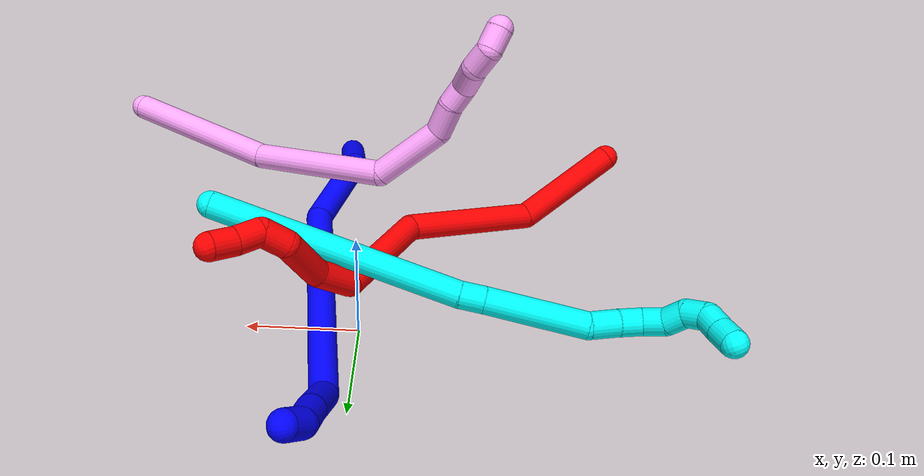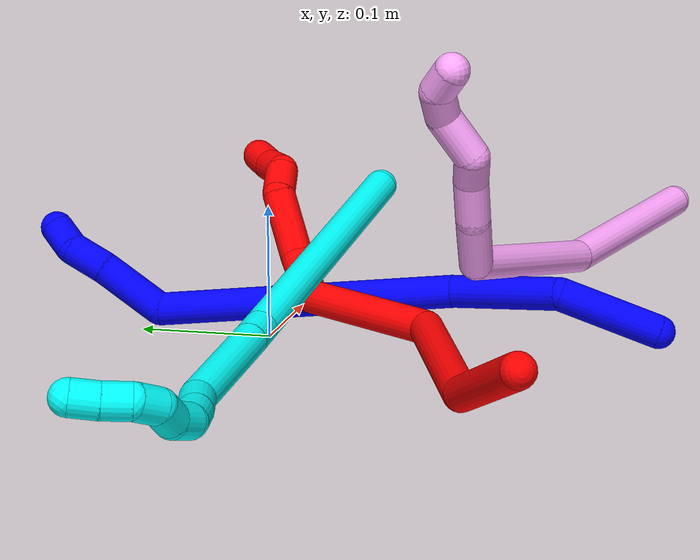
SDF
<sdf version="1.7">
 <world name="default">
  <plugin name="TubeGeneratorPlugin" filename="libtube_generator_plugin.so"/>
  <model name="photoneo_s_sensor">
   <static>1</static>
   <pose>0 0 2 1.57079 1.57079 3.14159</pose>
   <link name="link">
    <inertial><mass>0.1</mass></inertial>
    <sensor name="sensor" type="depth">
     <update_rate>30</update_rate>
     <camera>
      <horizontal_fov>1.22</horizontal_fov>
      <image><width>1920</width><height>1200</height><format>B8G8R8</format></image>
      <clip><near>0.1</near><far>4</far></clip>
      <depth_camera><output>points</output></depth_camera>
     </camera>
     <plugin name="camera_plugin" filename="libgazebo_ros_depth_camera.so">
      <baseline>0.2</baseline>
      <alwaysOn>1</alwaysOn>
      <updateRate>0.0</updateRate>
      <cameraName>camera_ir</cameraName>
      <imageTopicName>/camera/color/image_raw</imageTopicName>
      <cameraInfoTopicName>/camera/color/camera_info</cameraInfoTopicName>
      <depthImageTopicName>/camera/depth/image_raw</depthImageTopicName>
      <depthImageCameraInfoTopicName>/camera/depth/camera_info</depthImageCameraInfoTopicName>
      <pointCloudTopicName>/camera/depth/points</pointCloudTopicName>
      <frameName>fr_optical</frameName>
      <pointCloudCutoff>0.1</pointCloudCutoff>
      <pointCloudCutoffMax>2.0</pointCloudCutoffMax>
      <distortionK1>0</distortionK1>
      <distortionK2>0</distortionK2>
      <distortionK3>0</distortionK3>
      <distortionT1>0</distortionT1>
      <distortionT2>0</distortionT2>
      <CxPrime>0</CxPrime>
      <Cx>0</Cx>
      <Cy>0</Cy>
      <focalLength>0</focalLength>
      <hackBaseline>0</hackBaseline>
     </plugin>
    </sensor>
   </link>
  </model>
  <gravity>0 0 -9.8</gravity>
  <magnetic_field>6e-06 2.3e-05 -4.2e-05</magnetic_field>
  <atmosphere type="adiabatic"/>
  <physics name="default_physics" default="0" type="ode">
   <max_step_size>0.003</max_step_size>
   <real_time_factor>1</real_time_factor>
   <real_time_update_rate>1000</real_time_update_rate>
   <max_contacts>10000</max_contacts>
   <ode>
    <solver>
     <type>quick</type>
     <iters>100</iters>
     <sor>1.3</sor>
     <use_dynamic_moi_rescaling>0</use_dynamic_moi_rescaling>
    </solver>
    <constraints>
     <contact_max_correcting_vel>0</contact_max_correcting_vel>
     <contact_surface_layer>0.001</contact_surface_layer>
     <cfm>0</cfm>
     <erp>0.2</erp>
    </constraints>
   </ode>
  </physics>
  <scene><ambient>0.4 0.4 0.4 1</ambient><background>0.7 0.7 0.7 1</background><shadows>0</shadows></scene>
  <audio><device>default</device></audio>
  <spherical_coordinates>
   <surface_model>EARTH_WGS84</surface_model>
   <latitude_deg>0</latitude_deg>
   <longitude_deg>0</longitude_deg>
   <elevation>0</elevation>
   <heading_deg>0</heading_deg>
  </spherical_coordinates>
  <model name="bin">
   <static>1</static>
   <link name="bottom">
    <collision name="collision-bottom">
     <pose>0 0 -0.01 0 -0 0</pose>
     <geometry><box><size>0.8 0.6 0.02</size></box></geometry>
     <surface>
      <friction><ode><mu>100</mu><mu2>100</mu2></ode></friction>
      <contact><collide_bitmask>65535</collide_bitmask></contact>
     </surface>
    </collision>
   </link>
   <link name="west_wall">
    <collision name="collision-west_wall">
     <pose>-0.41 0 0.1 0 -0 0</pose>
     <geometry><box><size>0.02 0.6 0.2</size></box></geometry>
     <surface>
      <friction><ode><mu>100</mu><mu2>100</mu2></ode></friction>
      <contact><collide_bitmask>65535</collide_bitmask></contact>
     </surface>
    </collision>
   </link>
   <link name="east_wall">
    <collision name="collision-east_wall">
     <pose>0.41 0 0.1 0 -0 0</pose>
     <geometry><box><size>0.02 0.6 0.2</size></box></geometry>
     <surface>
      <friction><ode><mu>100</mu><mu2>100</mu2></ode></friction>
      <contact><collide_bitmask>65535</collide_bitmask></contact>
     </surface>
    </collision>
   </link>
   <link name="south_wall">
    <collision name="collision-south_wall">
     <pose>0 -0.31 0.1 0 -0 0</pose>
     <geometry><box><size>0.8 0.02 0.2</size></box></geometry>
     <surface>
      <friction><ode><mu>100</mu><mu2>100</mu2></ode></friction>
      <contact><collide_bitmask>65535</collide_bitmask></contact>
     </surface>
    </collision>
   </link>
   <link name="north_wall">
    <collision name="collision-north_wall">
     <pose>0 0.31 0.1 0 -0 0</pose>
     <geometry><box><size>0.8 0.02 0.2</size></box></geometry>
     <surface>
      <friction><ode><mu>100</mu><mu2>100</mu2></ode></friction>
      <contact><collide_bitmask>65535</collide_bitmask></contact>
     </surface>
    </collision>
   </link>
  </model>
  <model name="1">
   <static>0</static>
   <link name="1">
    <collision name="collision-cylinder-e_1_1_4">
     <pose>-0.005535 0.030704 0.02348 -0.917951 -0.142228 0.070375</pose>
     <geometry><cylinder><radius>0.0125</radius><length>0.078095</length></cylinder></geometry>
     <surface>
      <friction><ode><mu>1.16</mu><mu2>1.16</mu2><slip1>0</slip1><slip2>0</slip2></ode></friction>
      <contact><ode><kp>1e+06</kp><kd>1</kd><max_vel>0</max_vel><min_depth>0.001</min_depth></ode></contact>
     </surface>
    </collision>
    <visual name="visual-cylinder-e_1_1_4">
     <pose>-0.005535 0.030704 0.02348 -0.917951 -0.142228 0.070375</pose>
     <geometry><cylinder><radius>0.0125</radius><length>0.078095</length></cylinder></geometry>
     <material><ambient>0 0 1 1</ambient></material>
    </visual>
    <collision name="collision-cylinder-e_2_4_5">
     <pose>-0.033092 0.099834 0.05127 -1.4591 -0.517727 0.464967</pose>
     <geometry><cylinder><radius>0.0125</radius><length>0.088995</length></cylinder></geometry>
     <surface>
      <friction><ode><mu>1.16</mu><mu2>1.16</mu2><slip1>0</slip1><slip2>0</slip2></ode></friction>
      <contact><ode><kp>1e+06</kp><kd>1</kd><max_vel>0</max_vel><min_depth>0.001</min_depth></ode></contact>
     </surface>
    </collision>
    <visual name="visual-cylinder-e_2_4_5">
     <pose>-0.033092 0.099834 0.05127 -1.4591 -0.517727 0.464967</pose>
     <geometry><cylinder><radius>0.0125</radius><length>0.088995</length></cylinder></geometry>
     <material><ambient>0 0 1 1</ambient></material>
    </visual>
    <collision name="collision-cylinder-e_3_5_6">
     <pose>-0.117067 0.214606 0.110814 -0.94449 -0.581592 0.303392</pose>
     <geometry><cylinder><radius>0.0125</radius><length>0.225545</length></cylinder></geometry>
     <surface>
      <friction><ode><mu>1.16</mu><mu2>1.16</mu2><slip1>0</slip1><slip2>0</slip2></ode></friction>
      <contact><ode><kp>1e+06</kp><kd>1</kd><max_vel>0</max_vel><min_depth>0.001</min_depth></ode></contact>
     </surface>
    </collision>
    <visual name="visual-cylinder-e_3_5_6">
     <pose>-0.117067 0.214606 0.110814 -0.94449 -0.581592 0.303392</pose>
     <geometry><cylinder><radius>0.0125</radius><length>0.225545</length></cylinder></geometry>
     <material><ambient>0 0 1 1</ambient></material>
    </visual>
    <collision name="collision-cylinder-e_4_6_7">
     <pose>-0.176451 0.314318 0.178778 -1.07197 0.096208 -0.057175</pose>
     <geometry><cylinder><radius>0.0125</radius><length>0.053464</length></cylinder></geometry>
     <surface>
      <friction><ode><mu>1.16</mu><mu2>1.16</mu2><slip1>0</slip1><slip2>0</slip2></ode></friction>
      <contact><ode><kp>1e+06</kp><kd>1</kd><max_vel>0</max_vel><min_depth>0.001</min_depth></ode></contact>
     </surface>
    </collision>
    <visual name="visual-cylinder-e_4_6_7">
     <pose>-0.176451 0.314318 0.178778 -1.07197 0.096208 -0.057175</pose>
     <geometry><cylinder><radius>0.0125</radius><length>0.053464</length></cylinder></geometry>
     <material><ambient>0 0 1 1</ambient></material>
    </visual>
    <collision name="collision-cylinder-e_5_7_8">
     <pose>-0.173962 0.351351 0.198544 -1.09532 -0.005106 0.003114</pose>
     <geometry><cylinder><radius>0.0125</radius><length>0.030746</length></cylinder></geometry>
     <surface>
      <friction><ode><mu>1.16</mu><mu2>1.16</mu2><slip1>0</slip1><slip2>0</slip2></ode></friction>
      <contact><ode><kp>1e+06</kp><kd>1</kd><max_vel>0</max_vel><min_depth>0.001</min_depth></ode></contact>
     </surface>
    </collision>
    <visual name="visual-cylinder-e_5_7_8">
     <pose>-0.173962 0.351351 0.198544 -1.09532 -0.005106 0.003114</pose>
     <geometry><cylinder><radius>0.0125</radius><length>0.030746</length></cylinder></geometry>
     <material><ambient>0 0 1 1</ambient></material>
    </visual>
    <collision name="collision-cylinder-e_6_8_2">
     <pose>-0.171192 0.37619 0.206638 -1.47646 0.248593 -0.226383</pose>
     <geometry><cylinder><radius>0.0125</radius><length>0.023155</length></cylinder></geometry>
     <surface>
      <friction><ode><mu>1.16</mu><mu2>1.16</mu2><slip1>0</slip1><slip2>0</slip2></ode></friction>
      <contact><ode><kp>1e+06</kp><kd>1</kd><max_vel>0</max_vel><min_depth>0.001</min_depth></ode></contact>
     </surface>
    </collision>
    <visual name="visual-cylinder-e_6_8_2">
     <pose>-0.171192 0.37619 0.206638 -1.47646 0.248593 -0.226383</pose>
     <geometry><cylinder><radius>0.0125</radius><length>0.023155</length></cylinder></geometry>
     <material><ambient>0 0 1 1</ambient></material>
    </visual>
    <collision name="collision-sphere-2">
     <pose>-0.168343 0.387362 0.207695 0 -0 0</pose>
     <geometry><sphere><radius>0.0125</radius></sphere></geometry>
     <surface>
      <friction><ode><mu>1.16</mu><mu2>1.16</mu2><slip1>0</slip1><slip2>0</slip2></ode></friction>
      <contact><ode><kp>1e+06</kp><kd>1</kd><max_vel>0</max_vel><min_depth>0.001</min_depth></ode></contact>
     </surface>
    </collision>
    <visual name="visual-sphere-2">
     <pose>-0.168343 0.387362 0.207695 0 -0 0</pose>
     <geometry><sphere><radius>0.0125</radius></sphere></geometry>
     <material><ambient>0 0 1 1</ambient></material>
    </visual>
    <collision name="collision-sphere-4">
     <pose>-0.01107 0.061409 0.04696 0 -0 0</pose>
     <geometry><sphere><radius>0.0125</radius></sphere></geometry>
     <surface>
      <friction><ode><mu>1.16</mu><mu2>1.16</mu2><slip1>0</slip1><slip2>0</slip2></ode></friction>
      <contact><ode><kp>1e+06</kp><kd>1</kd><max_vel>0</max_vel><min_depth>0.001</min_depth></ode></contact>
     </surface>
    </collision>
    <visual name="visual-sphere-4">
     <pose>-0.01107 0.061409 0.04696 0 -0 0</pose>
     <geometry><sphere><radius>0.0125</radius></sphere></geometry>
     <material><ambient>0 0 1 1</ambient></material>
    </visual>
    <collision name="collision-sphere-1">
     <geometry><sphere><radius>0.0125</radius></sphere></geometry>
     <surface>
      <friction><ode><mu>1.16</mu><mu2>1.16</mu2><slip1>0</slip1><slip2>0</slip2></ode></friction>
      <contact><ode><kp>1e+06</kp><kd>1</kd><max_vel>0</max_vel><min_depth>0.001</min_depth></ode></contact>
     </surface>
    </collision>
    <visual name="visual-sphere-1">
     <geometry><sphere><radius>0.0125</radius></sphere></geometry>
     <material><ambient>0 0 1 1</ambient></material>
    </visual>
    <collision name="collision-sphere-8">
     <pose>-0.17404 0.365019 0.205581 0 -0 0</pose>
     <geometry><sphere><radius>0.0125</radius></sphere></geometry>
     <surface>
      <friction><ode><mu>1.16</mu><mu2>1.16</mu2><slip1>0</slip1><slip2>0</slip2></ode></friction>
      <contact><ode><kp>1e+06</kp><kd>1</kd><max_vel>0</max_vel><min_depth>0.001</min_depth></ode></contact>
     </surface>
    </collision>
    <visual name="visual-sphere-8">
     <pose>-0.17404 0.365019 0.205581 0 -0 0</pose>
     <geometry><sphere><radius>0.0125</radius></sphere></geometry>
     <material><ambient>0 0 1 1</ambient></material>
    </visual>
    <collision name="collision-sphere-5">
     <pose>-0.055114 0.138259 0.055579 0 -0 0</pose>
     <geometry><sphere><radius>0.0125</radius></sphere></geometry>
     <surface>
      <friction><ode><mu>1.16</mu><mu2>1.16</mu2><slip1>0</slip1><slip2>0</slip2></ode></friction>
      <contact><ode><kp>1e+06</kp><kd>1</kd><max_vel>0</max_vel><min_depth>0.001</min_depth></ode></contact>
     </surface>
    </collision>
    <visual name="visual-sphere-5">
     <pose>-0.055114 0.138259 0.055579 0 -0 0</pose>
     <geometry><sphere><radius>0.0125</radius></sphere></geometry>
     <material><ambient>0 0 1 1</ambient></material>
    </visual>
    <collision name="collision-sphere-6">
     <pose>-0.179019 0.290952 0.166048 0 -0 0</pose>
     <geometry><sphere><radius>0.0125</radius></sphere></geometry>
     <surface>
      <friction><ode><mu>1.16</mu><mu2>1.16</mu2><slip1>0</slip1><slip2>0</slip2></ode></friction>
      <contact><ode><kp>1e+06</kp><kd>1</kd><max_vel>0</max_vel><min_depth>0.001</min_depth></ode></contact>
     </surface>
    </collision>
    <visual name="visual-sphere-6">
     <pose>-0.179019 0.290952 0.166048 0 -0 0</pose>
     <geometry><sphere><radius>0.0125</radius></sphere></geometry>
     <material><ambient>0 0 1 1</ambient></material>
    </visual>
    <collision name="collision-sphere-7">
     <pose>-0.173883 0.337684 0.191507 0 -0 0</pose>
     <geometry><sphere><radius>0.0125</radius></sphere></geometry>
     <surface>
      <friction><ode><mu>1.16</mu><mu2>1.16</mu2><slip1>0</slip1><slip2>0</slip2></ode></friction>
      <contact><ode><kp>1e+06</kp><kd>1</kd><max_vel>0</max_vel><min_depth>0.001</min_depth></ode></contact>
     </surface>
    </collision>
    <visual name="visual-sphere-7">
     <pose>-0.173883 0.337684 0.191507 0 -0 0</pose>
     <geometry><sphere><radius>0.0125</radius></sphere></geometry>
     <material><ambient>0 0 1 1</ambient></material>
    </visual>
    <inertial>
     <pose>-0.097055 0.192007 0.103674 0 -0 0</pose>
     <mass>0.5</mass>
     <inertia>
      <ixx>0.001134</ixx>
      <ixy>0</ixy>
      <ixz>0</ixz>
      <iyy>0.00102</iyy>
      <iyz>0</iyz>
      <izz>-0.000177</izz>
     </inertia>
    </inertial>
   </link>
   <pose>0.033912 -0.287382 0.011492 0.806761 -1.06727 -1.31621</pose>
  </model>
  <model name="2">
   <static>0</static>
   <link name="2">
    <collision name="collision-cylinder-e_1_1_4">
     <pose>-0.011515 0.005386 -0.049853 -3.03397 -0.225732 2.25438</pose>
     <geometry><cylinder><radius>0.0125</radius><length>0.102898</length></cylinder></geometry>
     <surface>
      <friction><ode><mu>1.16</mu><mu2>1.16</mu2><slip1>0</slip1><slip2>0</slip2></ode></friction>
      <contact><ode><kp>1e+06</kp><kd>1</kd><max_vel>0</max_vel><min_depth>0.001</min_depth></ode></contact>
     </surface>
    </collision>
    <visual name="visual-cylinder-e_1_1_4">
     <pose>-0.011515 0.005386 -0.049853 -3.03397 -0.225732 2.25438</pose>
     <geometry><cylinder><radius>0.0125</radius><length>0.102898</length></cylinder></geometry>
     <material><ambient>1 0 0 1</ambient></material>
    </visual>
    <collision name="collision-cylinder-e_2_4_5">
     <pose>-0.003569 0.012277 -0.158796 -3.11612 0.31807 -2.98312</pose>
     <geometry><cylinder><radius>0.0125</radius><length>0.124459</length></cylinder></geometry>
     <surface>
      <friction><ode><mu>1.16</mu><mu2>1.16</mu2><slip1>0</slip1><slip2>0</slip2></ode></friction>
      <contact><ode><kp>1e+06</kp><kd>1</kd><max_vel>0</max_vel><min_depth>0.001</min_depth></ode></contact>
     </surface>
    </collision>
    <visual name="visual-cylinder-e_2_4_5">
     <pose>-0.003569 0.012277 -0.158796 -3.11612 0.31807 -2.98312</pose>
     <geometry><cylinder><radius>0.0125</radius><length>0.124459</length></cylinder></geometry>
     <material><ambient>1 0 0 1</ambient></material>
    </visual>
    <collision name="collision-cylinder-e_3_5_6">
     <pose>0.021905 0.049963 -0.258014 -2.40789 0.110838 -0.286773</pose>
     <geometry><cylinder><radius>0.0125</radius><length>0.108728</length></cylinder></geometry>
     <surface>
      <friction><ode><mu>1.16</mu><mu2>1.16</mu2><slip1>0</slip1><slip2>0</slip2></ode></friction>
      <contact><ode><kp>1e+06</kp><kd>1</kd><max_vel>0</max_vel><min_depth>0.001</min_depth></ode></contact>
     </surface>
    </collision>
    <visual name="visual-cylinder-e_3_5_6">
     <pose>0.021905 0.049963 -0.258014 -2.40789 0.110838 -0.286773</pose>
     <geometry><cylinder><radius>0.0125</radius><length>0.108728</length></cylinder></geometry>
     <material><ambient>1 0 0 1</ambient></material>
    </visual>
    <collision name="collision-cylinder-e_4_6_7">
     <pose>0.042374 0.091439 -0.310996 -2.75077 0.804906 -2.27111</pose>
     <geometry><cylinder><radius>0.0125</radius><length>0.040112</length></cylinder></geometry>
     <surface>
      <friction><ode><mu>1.16</mu><mu2>1.16</mu2><slip1>0</slip1><slip2>0</slip2></ode></friction>
      <contact><ode><kp>1e+06</kp><kd>1</kd><max_vel>0</max_vel><min_depth>0.001</min_depth></ode></contact>
     </surface>
    </collision>
    <visual name="visual-cylinder-e_4_6_7">
     <pose>0.042374 0.091439 -0.310996 -2.75077 0.804906 -2.27111</pose>
     <geometry><cylinder><radius>0.0125</radius><length>0.040112</length></cylinder></geometry>
     <material><ambient>1 0 0 1</ambient></material>
    </visual>
    <collision name="collision-cylinder-e_5_7_8">
     <pose>0.07999 0.105191 -0.33201 -2.33836 1.10125 -1.93128</pose>
     <geometry><cylinder><radius>0.0125</radius><length>0.051941</length></cylinder></geometry>
     <surface>
      <friction><ode><mu>1.16</mu><mu2>1.16</mu2><slip1>0</slip1><slip2>0</slip2></ode></friction>
      <contact><ode><kp>1e+06</kp><kd>1</kd><max_vel>0</max_vel><min_depth>0.001</min_depth></ode></contact>
     </surface>
    </collision>
    <visual name="visual-cylinder-e_5_7_8">
     <pose>0.07999 0.105191 -0.33201 -2.33836 1.10125 -1.93128</pose>
     <geometry><cylinder><radius>0.0125</radius><length>0.051941</length></cylinder></geometry>
     <material><ambient>1 0 0 1</ambient></material>
    </visual>
    <collision name="collision-cylinder-e_6_8_9">
     <pose>0.112456 0.112294 -0.348321 2.97702 0.844747 2.77862</pose>
     <geometry><cylinder><radius>0.0125</radius><length>0.024889</length></cylinder></geometry>
     <surface>
      <friction><ode><mu>1.16</mu><mu2>1.16</mu2><slip1>0</slip1><slip2>0</slip2></ode></friction>
      <contact><ode><kp>1e+06</kp><kd>1</kd><max_vel>0</max_vel><min_depth>0.001</min_depth></ode></contact>
     </surface>
    </collision>
    <visual name="visual-cylinder-e_6_8_9">
     <pose>0.112456 0.112294 -0.348321 2.97702 0.844747 2.77862</pose>
     <geometry><cylinder><radius>0.0125</radius><length>0.024889</length></cylinder></geometry>
     <material><ambient>1 0 0 1</ambient></material>
    </visual>
    <collision name="collision-cylinder-e_7_9_10">
     <pose>0.123787 0.114184 -0.367829 -2.8634 0.169862 -1.09272</pose>
     <geometry><cylinder><radius>0.0125</radius><length>0.023968</length></cylinder></geometry>
     <surface>
      <friction><ode><mu>1.16</mu><mu2>1.16</mu2><slip1>0</slip1><slip2>0</slip2></ode></friction>
      <contact><ode><kp>1e+06</kp><kd>1</kd><max_vel>0</max_vel><min_depth>0.001</min_depth></ode></contact>
     </surface>
    </collision>
    <visual name="visual-cylinder-e_7_9_10">
     <pose>0.123787 0.114184 -0.367829 -2.8634 0.169862 -1.09272</pose>
     <geometry><cylinder><radius>0.0125</radius><length>0.023968</length></cylinder></geometry>
     <material><ambient>1 0 0 1</ambient></material>
    </visual>
    <collision name="collision-cylinder-e_8_10_2">
     <pose>0.129646 0.120954 -0.389442 -2.81044 0.33971 -1.59678</pose>
     <geometry><cylinder><radius>0.0125</radius><length>0.023005</length></cylinder></geometry>
     <surface>
      <friction><ode><mu>1.16</mu><mu2>1.16</mu2><slip1>0</slip1><slip2>0</slip2></ode></friction>
      <contact><ode><kp>1e+06</kp><kd>1</kd><max_vel>0</max_vel><min_depth>0.001</min_depth></ode></contact>
     </surface>
    </collision>
    <visual name="visual-cylinder-e_8_10_2">
     <pose>0.129646 0.120954 -0.389442 -2.81044 0.33971 -1.59678</pose>
     <geometry><cylinder><radius>0.0125</radius><length>0.023005</length></cylinder></geometry>
     <material><ambient>1 0 0 1</ambient></material>
    </visual>
    <collision name="collision-sphere-2">
     <pose>0.133479 0.12448 -0.399698 0 -0 0</pose>
     <geometry><sphere><radius>0.0125</radius></sphere></geometry>
     <surface>
      <friction><ode><mu>1.16</mu><mu2>1.16</mu2><slip1>0</slip1><slip2>0</slip2></ode></friction>
      <contact><ode><kp>1e+06</kp><kd>1</kd><max_vel>0</max_vel><min_depth>0.001</min_depth></ode></contact>
     </surface>
    </collision>
    <visual name="visual-sphere-2">
     <pose>0.133479 0.12448 -0.399698 0 -0 0</pose>
     <geometry><sphere><radius>0.0125</radius></sphere></geometry>
     <material><ambient>1 0 0 1</ambient></material>
    </visual>
    <collision name="collision-sphere-10">
     <pose>0.125813 0.117428 -0.379186 0 -0 0</pose>
     <geometry><sphere><radius>0.0125</radius></sphere></geometry>
     <surface>
      <friction><ode><mu>1.16</mu><mu2>1.16</mu2><slip1>0</slip1><slip2>0</slip2></ode></friction>
      <contact><ode><kp>1e+06</kp><kd>1</kd><max_vel>0</max_vel><min_depth>0.001</min_depth></ode></contact>
     </surface>
    </collision>
    <visual name="visual-sphere-10">
     <pose>0.125813 0.117428 -0.379186 0 -0 0</pose>
     <geometry><sphere><radius>0.0125</radius></sphere></geometry>
     <material><ambient>1 0 0 1</ambient></material>
    </visual>
    <collision name="collision-sphere-9">
     <pose>0.121762 0.11094 -0.356471 0 -0 0</pose>
     <geometry><sphere><radius>0.0125</radius></sphere></geometry>
     <surface>
      <friction><ode><mu>1.16</mu><mu2>1.16</mu2><slip1>0</slip1><slip2>0</slip2></ode></friction>
      <contact><ode><kp>1e+06</kp><kd>1</kd><max_vel>0</max_vel><min_depth>0.001</min_depth></ode></contact>
     </surface>
    </collision>
    <visual name="visual-sphere-9">
     <pose>0.121762 0.11094 -0.356471 0 -0 0</pose>
     <geometry><sphere><radius>0.0125</radius></sphere></geometry>
     <material><ambient>1 0 0 1</ambient></material>
    </visual>
    <collision name="collision-sphere-4">
     <pose>-0.023031 0.010772 -0.099707 0 -0 0</pose>
     <geometry><sphere><radius>0.0125</radius></sphere></geometry>
     <surface>
      <friction><ode><mu>1.16</mu><mu2>1.16</mu2><slip1>0</slip1><slip2>0</slip2></ode></friction>
      <contact><ode><kp>1e+06</kp><kd>1</kd><max_vel>0</max_vel><min_depth>0.001</min_depth></ode></contact>
     </surface>
    </collision>
    <visual name="visual-sphere-4">
     <pose>-0.023031 0.010772 -0.099707 0 -0 0</pose>
     <geometry><sphere><radius>0.0125</radius></sphere></geometry>
     <material><ambient>1 0 0 1</ambient></material>
    </visual>
    <collision name="collision-sphere-1">
     <geometry><sphere><radius>0.0125</radius></sphere></geometry>
     <surface>
      <friction><ode><mu>1.16</mu><mu2>1.16</mu2><slip1>0</slip1><slip2>0</slip2></ode></friction>
      <contact><ode><kp>1e+06</kp><kd>1</kd><max_vel>0</max_vel><min_depth>0.001</min_depth></ode></contact>
     </surface>
    </collision>
    <visual name="visual-sphere-1">
     <geometry><sphere><radius>0.0125</radius></sphere></geometry>
     <material><ambient>1 0 0 1</ambient></material>
    </visual>
    <collision name="collision-sphere-8">
     <pose>0.10315 0.113647 -0.34017 0 -0 0</pose>
     <geometry><sphere><radius>0.0125</radius></sphere></geometry>
     <surface>
      <friction><ode><mu>1.16</mu><mu2>1.16</mu2><slip1>0</slip1><slip2>0</slip2></ode></friction>
      <contact><ode><kp>1e+06</kp><kd>1</kd><max_vel>0</max_vel><min_depth>0.001</min_depth></ode></contact>
     </surface>
    </collision>
    <visual name="visual-sphere-8">
     <pose>0.10315 0.113647 -0.34017 0 -0 0</pose>
     <geometry><sphere><radius>0.0125</radius></sphere></geometry>
     <material><ambient>1 0 0 1</ambient></material>
    </visual>
    <collision name="collision-sphere-5">
     <pose>0.015892 0.013783 -0.217885 0 -0 0</pose>
     <geometry><sphere><radius>0.0125</radius></sphere></geometry>
     <surface>
      <friction><ode><mu>1.16</mu><mu2>1.16</mu2><slip1>0</slip1><slip2>0</slip2></ode></friction>
      <contact><ode><kp>1e+06</kp><kd>1</kd><max_vel>0</max_vel><min_depth>0.001</min_depth></ode></contact>
     </surface>
    </collision>
    <visual name="visual-sphere-5">
     <pose>0.015892 0.013783 -0.217885 0 -0 0</pose>
     <geometry><sphere><radius>0.0125</radius></sphere></geometry>
     <material><ambient>1 0 0 1</ambient></material>
    </visual>
    <collision name="collision-sphere-6">
     <pose>0.027919 0.086143 -0.298142 0 -0 0</pose>
     <geometry><sphere><radius>0.0125</radius></sphere></geometry>
     <surface>
      <friction><ode><mu>1.16</mu><mu2>1.16</mu2><slip1>0</slip1><slip2>0</slip2></ode></friction>
      <contact><ode><kp>1e+06</kp><kd>1</kd><max_vel>0</max_vel><min_depth>0.001</min_depth></ode></contact>
     </surface>
    </collision>
    <visual name="visual-sphere-6">
     <pose>0.027919 0.086143 -0.298142 0 -0 0</pose>
     <geometry><sphere><radius>0.0125</radius></sphere></geometry>
     <material><ambient>1 0 0 1</ambient></material>
    </visual>
    <collision name="collision-sphere-7">
     <pose>0.05683 0.096735 -0.323851 0 -0 0</pose>
     <geometry><sphere><radius>0.0125</radius></sphere></geometry>
     <surface>
      <friction><ode><mu>1.16</mu><mu2>1.16</mu2><slip1>0</slip1><slip2>0</slip2></ode></friction>
      <contact><ode><kp>1e+06</kp><kd>1</kd><max_vel>0</max_vel><min_depth>0.001</min_depth></ode></contact>
     </surface>
    </collision>
    <visual name="visual-sphere-7">
     <pose>0.05683 0.096735 -0.323851 0 -0 0</pose>
     <geometry><sphere><radius>0.0125</radius></sphere></geometry>
     <material><ambient>1 0 0 1</ambient></material>
    </visual>
    <inertial>
     <pose>0.030711 0.049921 -0.218222 0 -0 0</pose>
     <mass>0.5</mass>
     <inertia>
      <ixx>-0.0001</ixx>
      <ixy>0</ixy>
      <ixz>0</ixz>
      <iyy>0.000179</iyy>
      <iyz>0</iyz>
      <izz>-0.000189</izz>
     </inertia>
    </inertial>
   </link>
   <pose>-0.233385 -0.223418 0.05315 0.617665 -1.30966 -0.225657</pose>
  </model>
  <model name="3">
   <static>0</static>
   <link name="3">
    <collision name="collision-cylinder-e_1_1_4">
     <pose>-0.081362 0.030503 0.078477 -0.370712 -0.768278 0.1513</pose>
     <geometry><cylinder><radius>0.0125</radius><length>0.23417</length></cylinder></geometry>
     <surface>
      <friction><ode><mu>1.16</mu><mu2>1.16</mu2><slip1>0</slip1><slip2>0</slip2></ode></friction>
      <contact><ode><kp>1e+06</kp><kd>1</kd><max_vel>0</max_vel><min_depth>0.001</min_depth></ode></contact>
     </surface>
    </collision>
    <visual name="visual-cylinder-e_1_1_4">
     <pose>-0.081362 0.030503 0.078477 -0.370712 -0.768278 0.1513</pose>
     <geometry><cylinder><radius>0.0125</radius><length>0.23417</length></cylinder></geometry>
     <material><ambient>0.003922 1 0.996078 1</ambient></material>
    </visual>
    <collision name="collision-cylinder-e_2_4_5">
     <pose>-0.17141 0.06439 0.163384 -0.484521 -0.874204 0.229907</pose>
     <geometry><cylinder><radius>0.0125</radius><length>0.022647</length></cylinder></geometry>
     <surface>
      <friction><ode><mu>1.16</mu><mu2>1.16</mu2><slip1>0</slip1><slip2>0</slip2></ode></friction>
      <contact><ode><kp>1e+06</kp><kd>1</kd><max_vel>0</max_vel><min_depth>0.001</min_depth></ode></contact>
     </surface>
    </collision>
    <visual name="visual-cylinder-e_2_4_5">
     <pose>-0.17141 0.06439 0.163384 -0.484521 -0.874204 0.229907</pose>
     <geometry><cylinder><radius>0.0125</radius><length>0.022647</length></cylinder></geometry>
     <material><ambient>0.003922 1 0.996078 1</ambient></material>
    </visual>
    <collision name="collision-cylinder-e_3_5_6">
     <pose>-0.215551 0.080623 0.197214 -0.438495 -0.864214 0.204807</pose>
     <geometry><cylinder><radius>0.0125</radius><length>0.093231</length></cylinder></geometry>
     <surface>
      <friction><ode><mu>1.16</mu><mu2>1.16</mu2><slip1>0</slip1><slip2>0</slip2></ode></friction>
      <contact><ode><kp>1e+06</kp><kd>1</kd><max_vel>0</max_vel><min_depth>0.001</min_depth></ode></contact>
     </surface>
    </collision>
    <visual name="visual-cylinder-e_3_5_6">
     <pose>-0.215551 0.080623 0.197214 -0.438495 -0.864214 0.204807</pose>
     <geometry><cylinder><radius>0.0125</radius><length>0.093231</length></cylinder></geometry>
     <material><ambient>0.003922 1 0.996078 1</ambient></material>
    </visual>
    <collision name="collision-cylinder-e_4_6_7">
     <pose>-0.261927 0.100518 0.228804 -1.03434 -0.927008 0.553986</pose>
     <geometry><cylinder><radius>0.0125</radius><length>0.02731</length></cylinder></geometry>
     <surface>
      <friction><ode><mu>1.16</mu><mu2>1.16</mu2><slip1>0</slip1><slip2>0</slip2></ode></friction>
      <contact><ode><kp>1e+06</kp><kd>1</kd><max_vel>0</max_vel><min_depth>0.001</min_depth></ode></contact>
     </surface>
    </collision>
    <visual name="visual-cylinder-e_4_6_7">
     <pose>-0.261927 0.100518 0.228804 -1.03434 -0.927008 0.553986</pose>
     <geometry><cylinder><radius>0.0125</radius><length>0.02731</length></cylinder></geometry>
     <material><ambient>0.003922 1 0.996078 1</ambient></material>
    </visual>
    <collision name="collision-cylinder-e_5_7_8">
     <pose>-0.282059 0.112208 0.236662 -0.902371 -0.99958 0.517272</pose>
     <geometry><cylinder><radius>0.0125</radius><length>0.021897</length></cylinder></geometry>
     <surface>
      <friction><ode><mu>1.16</mu><mu2>1.16</mu2><slip1>0</slip1><slip2>0</slip2></ode></friction>
      <contact><ode><kp>1e+06</kp><kd>1</kd><max_vel>0</max_vel><min_depth>0.001</min_depth></ode></contact>
     </surface>
    </collision>
    <visual name="visual-cylinder-e_5_7_8">
     <pose>-0.282059 0.112208 0.236662 -0.902371 -0.99958 0.517272</pose>
     <geometry><cylinder><radius>0.0125</radius><length>0.021897</length></cylinder></geometry>
     <material><ambient>0.003922 1 0.996078 1</ambient></material>
    </visual>
    <collision name="collision-cylinder-e_6_8_9">
     <pose>-0.301109 0.116257 0.243451 0.188946 -1.25852 -0.137742</pose>
     <geometry><cylinder><radius>0.0125</radius><length>0.02068</length></cylinder></geometry>
     <surface>
      <friction><ode><mu>1.16</mu><mu2>1.16</mu2><slip1>0</slip1><slip2>0</slip2></ode></friction>
      <contact><ode><kp>1e+06</kp><kd>1</kd><max_vel>0</max_vel><min_depth>0.001</min_depth></ode></contact>
     </surface>
    </collision>
    <visual name="visual-cylinder-e_6_8_9">
     <pose>-0.301109 0.116257 0.243451 0.188946 -1.25852 -0.137742</pose>
     <geometry><cylinder><radius>0.0125</radius><length>0.02068</length></cylinder></geometry>
     <material><ambient>0.003922 1 0.996078 1</ambient></material>
    </visual>
    <collision name="collision-cylinder-e_7_9_10">
     <pose>-0.32069 0.113721 0.245402 2.11315 -1.34237 -1.90504</pose>
     <geometry><cylinder><radius>0.0125</radius><length>0.02</length></cylinder></geometry>
     <surface>
      <friction><ode><mu>1.16</mu><mu2>1.16</mu2><slip1>0</slip1><slip2>0</slip2></ode></friction>
      <contact><ode><kp>1e+06</kp><kd>1</kd><max_vel>0</max_vel><min_depth>0.001</min_depth></ode></contact>
     </surface>
    </collision>
    <visual name="visual-cylinder-e_7_9_10">
     <pose>-0.32069 0.113721 0.245402 2.11315 -1.34237 -1.90504</pose>
     <geometry><cylinder><radius>0.0125</radius><length>0.02</length></cylinder></geometry>
     <material><ambient>0.003922 1 0.996078 1</ambient></material>
    </visual>
    <collision name="collision-cylinder-e_8_10_11">
     <pose>-0.338858 0.107565 0.247665 0.887635 -0.997902 -0.507038</pose>
     <geometry><cylinder><radius>0.0125</radius><length>0.020058</length></cylinder></geometry>
     <surface>
      <friction><ode><mu>1.16</mu><mu2>1.16</mu2><slip1>0</slip1><slip2>0</slip2></ode></friction>
      <contact><ode><kp>1e+06</kp><kd>1</kd><max_vel>0</max_vel><min_depth>0.001</min_depth></ode></contact>
     </surface>
    </collision>
    <visual name="visual-cylinder-e_8_10_11">
     <pose>-0.338858 0.107565 0.247665 0.887635 -0.997902 -0.507038</pose>
     <geometry><cylinder><radius>0.0125</radius><length>0.020058</length></cylinder></geometry>
     <material><ambient>0.003922 1 0.996078 1</ambient></material>
    </visual>
    <collision name="collision-cylinder-e_9_11_12">
     <pose>-0.351055 0.096095 0.256859 0.899412 -0.386449 -0.188334</pose>
     <geometry><cylinder><radius>0.0125</radius><length>0.020003</length></cylinder></geometry>
     <surface>
      <friction><ode><mu>1.16</mu><mu2>1.16</mu2><slip1>0</slip1><slip2>0</slip2></ode></friction>
      <contact><ode><kp>1e+06</kp><kd>1</kd><max_vel>0</max_vel><min_depth>0.001</min_depth></ode></contact>
     </surface>
    </collision>
    <visual name="visual-cylinder-e_9_11_12">
     <pose>-0.351055 0.096095 0.256859 0.899412 -0.386449 -0.188334</pose>
     <geometry><cylinder><radius>0.0125</radius><length>0.020003</length></cylinder></geometry>
     <material><ambient>0.003922 1 0.996078 1</ambient></material>
    </visual>
    <collision name="collision-cylinder-e_10_12_2">
     <pose>-0.35903 0.081257 0.267605 0.989543 -0.433938 -0.236756</pose>
     <geometry><cylinder><radius>0.0125</radius><length>0.020004</length></cylinder></geometry>
     <surface>
      <friction><ode><mu>1.16</mu><mu2>1.16</mu2><slip1>0</slip1><slip2>0</slip2></ode></friction>
      <contact><ode><kp>1e+06</kp><kd>1</kd><max_vel>0</max_vel><min_depth>0.001</min_depth></ode></contact>
     </surface>
    </collision>
    <visual name="visual-cylinder-e_10_12_2">
     <pose>-0.35903 0.081257 0.267605 0.989543 -0.433938 -0.236756</pose>
     <geometry><cylinder><radius>0.0125</radius><length>0.020004</length></cylinder></geometry>
     <material><ambient>0.003922 1 0.996078 1</ambient></material>
    </visual>
    <collision name="collision-sphere-2">
     <pose>-0.363235 0.073673 0.272587 0 -0 0</pose>
     <geometry><sphere><radius>0.0125</radius></sphere></geometry>
     <surface>
      <friction><ode><mu>1.16</mu><mu2>1.16</mu2><slip1>0</slip1><slip2>0</slip2></ode></friction>
      <contact><ode><kp>1e+06</kp><kd>1</kd><max_vel>0</max_vel><min_depth>0.001</min_depth></ode></contact>
     </surface>
    </collision>
    <visual name="visual-sphere-2">
     <pose>-0.363235 0.073673 0.272587 0 -0 0</pose>
     <geometry><sphere><radius>0.0125</radius></sphere></geometry>
     <material><ambient>0.003922 1 0.996078 1</ambient></material>
    </visual>
    <collision name="collision-sphere-12">
     <pose>-0.354825 0.088842 0.262622 0 -0 0</pose>
     <geometry><sphere><radius>0.0125</radius></sphere></geometry>
     <surface>
      <friction><ode><mu>1.16</mu><mu2>1.16</mu2><slip1>0</slip1><slip2>0</slip2></ode></friction>
      <contact><ode><kp>1e+06</kp><kd>1</kd><max_vel>0</max_vel><min_depth>0.001</min_depth></ode></contact>
     </surface>
    </collision>
    <visual name="visual-sphere-12">
     <pose>-0.354825 0.088842 0.262622 0 -0 0</pose>
     <geometry><sphere><radius>0.0125</radius></sphere></geometry>
     <material><ambient>0.003922 1 0.996078 1</ambient></material>
    </visual>
    <collision name="collision-sphere-11">
     <pose>-0.347285 0.103348 0.251096 0 -0 0</pose>
     <geometry><sphere><radius>0.0125</radius></sphere></geometry>
     <surface>
      <friction><ode><mu>1.16</mu><mu2>1.16</mu2><slip1>0</slip1><slip2>0</slip2></ode></friction>
      <contact><ode><kp>1e+06</kp><kd>1</kd><max_vel>0</max_vel><min_depth>0.001</min_depth></ode></contact>
     </surface>
    </collision>
    <visual name="visual-sphere-11">
     <pose>-0.347285 0.103348 0.251096 0 -0 0</pose>
     <geometry><sphere><radius>0.0125</radius></sphere></geometry>
     <material><ambient>0.003922 1 0.996078 1</ambient></material>
    </visual>
    <collision name="collision-sphere-10">
     <pose>-0.33043 0.111781 0.244233 0 -0 0</pose>
     <geometry><sphere><radius>0.0125</radius></sphere></geometry>
     <surface>
      <friction><ode><mu>1.16</mu><mu2>1.16</mu2><slip1>0</slip1><slip2>0</slip2></ode></friction>
      <contact><ode><kp>1e+06</kp><kd>1</kd><max_vel>0</max_vel><min_depth>0.001</min_depth></ode></contact>
     </surface>
    </collision>
    <visual name="visual-sphere-10">
     <pose>-0.33043 0.111781 0.244233 0 -0 0</pose>
     <geometry><sphere><radius>0.0125</radius></sphere></geometry>
     <material><ambient>0.003922 1 0.996078 1</ambient></material>
    </visual>
    <collision name="collision-sphere-9">
     <pose>-0.310949 0.11566 0.246571 0 -0 0</pose>
     <geometry><sphere><radius>0.0125</radius></sphere></geometry>
     <surface>
      <friction><ode><mu>1.16</mu><mu2>1.16</mu2><slip1>0</slip1><slip2>0</slip2></ode></friction>
      <contact><ode><kp>1e+06</kp><kd>1</kd><max_vel>0</max_vel><min_depth>0.001</min_depth></ode></contact>
     </surface>
    </collision>
    <visual name="visual-sphere-9">
     <pose>-0.310949 0.11566 0.246571 0 -0 0</pose>
     <geometry><sphere><radius>0.0125</radius></sphere></geometry>
     <material><ambient>0.003922 1 0.996078 1</ambient></material>
    </visual>
    <collision name="collision-sphere-4">
     <pose>-0.162724 0.061005 0.156955 0 -0 0</pose>
     <geometry><sphere><radius>0.0125</radius></sphere></geometry>
     <surface>
      <friction><ode><mu>1.16</mu><mu2>1.16</mu2><slip1>0</slip1><slip2>0</slip2></ode></friction>
      <contact><ode><kp>1e+06</kp><kd>1</kd><max_vel>0</max_vel><min_depth>0.001</min_depth></ode></contact>
     </surface>
    </collision>
    <visual name="visual-sphere-4">
     <pose>-0.162724 0.061005 0.156955 0 -0 0</pose>
     <geometry><sphere><radius>0.0125</radius></sphere></geometry>
     <material><ambient>0.003922 1 0.996078 1</ambient></material>
    </visual>
    <collision name="collision-sphere-1">
     <geometry><sphere><radius>0.0125</radius></sphere></geometry>
     <surface>
      <friction><ode><mu>1.16</mu><mu2>1.16</mu2><slip1>0</slip1><slip2>0</slip2></ode></friction>
      <contact><ode><kp>1e+06</kp><kd>1</kd><max_vel>0</max_vel><min_depth>0.001</min_depth></ode></contact>
     </surface>
    </collision>
    <visual name="visual-sphere-1">
     <geometry><sphere><radius>0.0125</radius></sphere></geometry>
     <material><ambient>0.003922 1 0.996078 1</ambient></material>
    </visual>
    <collision name="collision-sphere-8">
     <pose>-0.29127 0.116853 0.24033 0 -0 0</pose>
     <geometry><sphere><radius>0.0125</radius></sphere></geometry>
     <surface>
      <friction><ode><mu>1.16</mu><mu2>1.16</mu2><slip1>0</slip1><slip2>0</slip2></ode></friction>
      <contact><ode><kp>1e+06</kp><kd>1</kd><max_vel>0</max_vel><min_depth>0.001</min_depth></ode></contact>
     </surface>
    </collision>
    <visual name="visual-sphere-8">
     <pose>-0.29127 0.116853 0.24033 0 -0 0</pose>
     <geometry><sphere><radius>0.0125</radius></sphere></geometry>
     <material><ambient>0.003922 1 0.996078 1</ambient></material>
    </visual>
    <collision name="collision-sphere-5">
     <pose>-0.180095 0.067774 0.169813 0 -0 0</pose>
     <geometry><sphere><radius>0.0125</radius></sphere></geometry>
     <surface>
      <friction><ode><mu>1.16</mu><mu2>1.16</mu2><slip1>0</slip1><slip2>0</slip2></ode></friction>
      <contact><ode><kp>1e+06</kp><kd>1</kd><max_vel>0</max_vel><min_depth>0.001</min_depth></ode></contact>
     </surface>
    </collision>
    <visual name="visual-sphere-5">
     <pose>-0.180095 0.067774 0.169813 0 -0 0</pose>
     <geometry><sphere><radius>0.0125</radius></sphere></geometry>
     <material><ambient>0.003922 1 0.996078 1</ambient></material>
    </visual>
    <collision name="collision-sphere-6">
     <pose>-0.251006 0.093473 0.224615 0 -0 0</pose>
     <geometry><sphere><radius>0.0125</radius></sphere></geometry>
     <surface>
      <friction><ode><mu>1.16</mu><mu2>1.16</mu2><slip1>0</slip1><slip2>0</slip2></ode></friction>
      <contact><ode><kp>1e+06</kp><kd>1</kd><max_vel>0</max_vel><min_depth>0.001</min_depth></ode></contact>
     </surface>
    </collision>
    <visual name="visual-sphere-6">
     <pose>-0.251006 0.093473 0.224615 0 -0 0</pose>
     <geometry><sphere><radius>0.0125</radius></sphere></geometry>
     <material><ambient>0.003922 1 0.996078 1</ambient></material>
    </visual>
    <collision name="collision-sphere-7">
     <pose>-0.272849 0.107562 0.232993 0 -0 0</pose>
     <geometry><sphere><radius>0.0125</radius></sphere></geometry>
     <surface>
      <friction><ode><mu>1.16</mu><mu2>1.16</mu2><slip1>0</slip1><slip2>0</slip2></ode></friction>
      <contact><ode><kp>1e+06</kp><kd>1</kd><max_vel>0</max_vel><min_depth>0.001</min_depth></ode></contact>
     </surface>
    </collision>
    <visual name="visual-sphere-7">
     <pose>-0.272849 0.107562 0.232993 0 -0 0</pose>
     <geometry><sphere><radius>0.0125</radius></sphere></geometry>
     <material><ambient>0.003922 1 0.996078 1</ambient></material>
    </visual>
    <inertial>
     <pose>-0.180003 0.063407 0.154592 0 -0 0</pose>
     <mass>0.5</mass>
     <inertia>
      <ixx>0.000918</ixx>
      <ixy>0</ixy>
      <ixz>0</ixz>
      <iyy>0.001247</iyy>
      <iyz>0</iyz>
      <izz>0.000535</izz>
     </inertia>
    </inertial>
   </link>
   <pose>0.135184 -0.055617 0.092316 -2.64222 0.535947 -0.070615</pose>
  </model>
  <model name="4">
   <static>0</static>
   <link name="4">
    <collision name="collision-cylinder-e_1_1_4">
     <pose>0.00784 -0.001569 -0.076207 3.12101 0.102496 2.74556</pose>
     <geometry><cylinder><radius>0.0125</radius><length>0.153251</length></cylinder></geometry>
     <surface>
      <friction><ode><mu>1.16</mu><mu2>1.16</mu2><slip1>0</slip1><slip2>0</slip2></ode></friction>
      <contact><ode><kp>1e+06</kp><kd>1</kd><max_vel>0</max_vel><min_depth>0.001</min_depth></ode></contact>
     </surface>
    </collision>
    <visual name="visual-cylinder-e_1_1_4">
     <pose>0.00784 -0.001569 -0.076207 3.12101 0.102496 2.74556</pose>
     <geometry><cylinder><radius>0.0125</radius><length>0.153251</length></cylinder></geometry>
     <material><ambient>1 0.65098 0.996078 1</ambient></material>
    </visual>
    <collision name="collision-cylinder-e_2_4_5">
     <pose>0.018716 0.014077 -0.221695 -2.89805 0.042496 -0.343883</pose>
     <geometry><cylinder><radius>0.0125</radius><length>0.142903</length></cylinder></geometry>
     <surface>
      <friction><ode><mu>1.16</mu><mu2>1.16</mu2><slip1>0</slip1><slip2>0</slip2></ode></friction>
      <contact><ode><kp>1e+06</kp><kd>1</kd><max_vel>0</max_vel><min_depth>0.001</min_depth></ode></contact>
     </surface>
    </collision>
    <visual name="visual-cylinder-e_2_4_5">
     <pose>0.018716 0.014077 -0.221695 -2.89805 0.042496 -0.343883</pose>
     <geometry><cylinder><radius>0.0125</radius><length>0.142903</length></cylinder></geometry>
     <material><ambient>1 0.65098 0.996078 1</ambient></material>
    </visual>
    <collision name="collision-cylinder-e_3_5_6">
     <pose>0.00418 0.052118 -0.314194 -2.41045 -0.513029 1.2015</pose>
     <geometry><cylinder><radius>0.0125</radius><length>0.071601</length></cylinder></geometry>
     <surface>
      <friction><ode><mu>1.16</mu><mu2>1.16</mu2><slip1>0</slip1><slip2>0</slip2></ode></friction>
      <contact><ode><kp>1e+06</kp><kd>1</kd><max_vel>0</max_vel><min_depth>0.001</min_depth></ode></contact>
     </surface>
    </collision>
    <visual name="visual-cylinder-e_3_5_6">
     <pose>0.00418 0.052118 -0.314194 -2.41045 -0.513029 1.2015</pose>
     <geometry><cylinder><radius>0.0125</radius><length>0.071601</length></cylinder></geometry>
     <material><ambient>1 0.65098 0.996078 1</ambient></material>
    </visual>
    <collision name="collision-cylinder-e_4_6_7">
     <pose>-0.018624 0.087119 -0.341314 -1.83929 -0.34193 0.445615</pose>
     <geometry><cylinder><radius>0.0125</radius><length>0.031207</length></cylinder></geometry>
     <surface>
      <friction><ode><mu>1.16</mu><mu2>1.16</mu2><slip1>0</slip1><slip2>0</slip2></ode></friction>
      <contact><ode><kp>1e+06</kp><kd>1</kd><max_vel>0</max_vel><min_depth>0.001</min_depth></ode></contact>
     </surface>
    </collision>
    <visual name="visual-cylinder-e_4_6_7">
     <pose>-0.018624 0.087119 -0.341314 -1.83929 -0.34193 0.445615</pose>
     <geometry><cylinder><radius>0.0125</radius><length>0.031207</length></cylinder></geometry>
     <material><ambient>1 0.65098 0.996078 1</ambient></material>
    </visual>
    <collision name="collision-cylinder-e_5_7_8">
     <pose>-0.029383 0.110032 -0.349802 -2.05426 -0.51043 0.81499</pose>
     <geometry><cylinder><radius>0.0125</radius><length>0.022626</length></cylinder></geometry>
     <surface>
      <friction><ode><mu>1.16</mu><mu2>1.16</mu2><slip1>0</slip1><slip2>0</slip2></ode></friction>
      <contact><ode><kp>1e+06</kp><kd>1</kd><max_vel>0</max_vel><min_depth>0.001</min_depth></ode></contact>
     </surface>
    </collision>
    <visual name="visual-cylinder-e_5_7_8">
     <pose>-0.029383 0.110032 -0.349802 -2.05426 -0.51043 0.81499</pose>
     <geometry><cylinder><radius>0.0125</radius><length>0.022626</length></cylinder></geometry>
     <material><ambient>1 0.65098 0.996078 1</ambient></material>
    </visual>
    <collision name="collision-cylinder-e_6_8_9">
     <pose>-0.030895 0.134736 -0.360034 -1.91061 0.232784 -0.327726</pose>
     <geometry><cylinder><radius>0.0125</radius><length>0.034805</length></cylinder></geometry>
     <surface>
      <friction><ode><mu>1.16</mu><mu2>1.16</mu2><slip1>0</slip1><slip2>0</slip2></ode></friction>
      <contact><ode><kp>1e+06</kp><kd>1</kd><max_vel>0</max_vel><min_depth>0.001</min_depth></ode></contact>
     </surface>
    </collision>
    <visual name="visual-cylinder-e_6_8_9">
     <pose>-0.030895 0.134736 -0.360034 -1.91061 0.232784 -0.327726</pose>
     <geometry><cylinder><radius>0.0125</radius><length>0.034805</length></cylinder></geometry>
     <material><ambient>1 0.65098 0.996078 1</ambient></material>
    </visual>
    <collision name="collision-cylinder-e_7_9_10">
     <pose>-0.030122 0.160087 -0.370846 -2.07406 -0.293729 0.490537</pose>
     <geometry><cylinder><radius>0.0125</radius><length>0.022389</length></cylinder></geometry>
     <surface>
      <friction><ode><mu>1.16</mu><mu2>1.16</mu2><slip1>0</slip1><slip2>0</slip2></ode></friction>
      <contact><ode><kp>1e+06</kp><kd>1</kd><max_vel>0</max_vel><min_depth>0.001</min_depth></ode></contact>
     </surface>
    </collision>
    <visual name="visual-cylinder-e_7_9_10">
     <pose>-0.030122 0.160087 -0.370846 -2.07406 -0.293729 0.490537</pose>
     <geometry><cylinder><radius>0.0125</radius><length>0.022389</length></cylinder></geometry>
     <material><ambient>1 0.65098 0.996078 1</ambient></material>
    </visual>
    <collision name="collision-cylinder-e_8_10_2">
     <pose>-0.0419 0.175565 -0.377619 -1.82852 -0.935109 1.16007</pose>
     <geometry><cylinder><radius>0.0125</radius><length>0.021219</length></cylinder></geometry>
     <surface>
      <friction><ode><mu>1.16</mu><mu2>1.16</mu2><slip1>0</slip1><slip2>0</slip2></ode></friction>
      <contact><ode><kp>1e+06</kp><kd>1</kd><max_vel>0</max_vel><min_depth>0.001</min_depth></ode></contact>
     </surface>
    </collision>
    <visual name="visual-cylinder-e_8_10_2">
     <pose>-0.0419 0.175565 -0.377619 -1.82852 -0.935109 1.16007</pose>
     <geometry><cylinder><radius>0.0125</radius><length>0.021219</length></cylinder></geometry>
     <material><ambient>1 0.65098 0.996078 1</ambient></material>
    </visual>
    <collision name="collision-sphere-2">
     <pose>-0.050437 0.181656 -0.379224 0 -0 0</pose>
     <geometry><sphere><radius>0.0125</radius></sphere></geometry>
     <surface>
      <friction><ode><mu>1.16</mu><mu2>1.16</mu2><slip1>0</slip1><slip2>0</slip2></ode></friction>
      <contact><ode><kp>1e+06</kp><kd>1</kd><max_vel>0</max_vel><min_depth>0.001</min_depth></ode></contact>
     </surface>
    </collision>
    <visual name="visual-sphere-2">
     <pose>-0.050437 0.181656 -0.379224 0 -0 0</pose>
     <geometry><sphere><radius>0.0125</radius></sphere></geometry>
     <material><ambient>1 0.65098 0.996078 1</ambient></material>
    </visual>
    <collision name="collision-sphere-10">
     <pose>-0.033363 0.169474 -0.376013 0 -0 0</pose>
     <geometry><sphere><radius>0.0125</radius></sphere></geometry>
     <surface>
      <friction><ode><mu>1.16</mu><mu2>1.16</mu2><slip1>0</slip1><slip2>0</slip2></ode></friction>
      <contact><ode><kp>1e+06</kp><kd>1</kd><max_vel>0</max_vel><min_depth>0.001</min_depth></ode></contact>
     </surface>
    </collision>
    <visual name="visual-sphere-10">
     <pose>-0.033363 0.169474 -0.376013 0 -0 0</pose>
     <geometry><sphere><radius>0.0125</radius></sphere></geometry>
     <material><ambient>1 0.65098 0.996078 1</ambient></material>
    </visual>
    <collision name="collision-sphere-9">
     <pose>-0.026881 0.150701 -0.365678 0 -0 0</pose>
     <geometry><sphere><radius>0.0125</radius></sphere></geometry>
     <surface>
      <friction><ode><mu>1.16</mu><mu2>1.16</mu2><slip1>0</slip1><slip2>0</slip2></ode></friction>
      <contact><ode><kp>1e+06</kp><kd>1</kd><max_vel>0</max_vel><min_depth>0.001</min_depth></ode></contact>
     </surface>
    </collision>
    <visual name="visual-sphere-9">
     <pose>-0.026881 0.150701 -0.365678 0 -0 0</pose>
     <geometry><sphere><radius>0.0125</radius></sphere></geometry>
     <material><ambient>1 0.65098 0.996078 1</ambient></material>
    </visual>
    <collision name="collision-sphere-4">
     <pose>0.01568 -0.003138 -0.152414 0 -0 0</pose>
     <geometry><sphere><radius>0.0125</radius></sphere></geometry>
     <surface>
      <friction><ode><mu>1.16</mu><mu2>1.16</mu2><slip1>0</slip1><slip2>0</slip2></ode></friction>
      <contact><ode><kp>1e+06</kp><kd>1</kd><max_vel>0</max_vel><min_depth>0.001</min_depth></ode></contact>
     </surface>
    </collision>
    <visual name="visual-sphere-4">
     <pose>0.01568 -0.003138 -0.152414 0 -0 0</pose>
     <geometry><sphere><radius>0.0125</radius></sphere></geometry>
     <material><ambient>1 0.65098 0.996078 1</ambient></material>
    </visual>
    <collision name="collision-sphere-1">
     <geometry><sphere><radius>0.0125</radius></sphere></geometry>
     <surface>
      <friction><ode><mu>1.16</mu><mu2>1.16</mu2><slip1>0</slip1><slip2>0</slip2></ode></friction>
      <contact><ode><kp>1e+06</kp><kd>1</kd><max_vel>0</max_vel><min_depth>0.001</min_depth></ode></contact>
     </surface>
    </collision>
    <visual name="visual-sphere-1">
     <geometry><sphere><radius>0.0125</radius></sphere></geometry>
     <material><ambient>1 0.65098 0.996078 1</ambient></material>
    </visual>
    <collision name="collision-sphere-8">
     <pose>-0.03491 0.118772 -0.35439 0 -0 0</pose>
     <geometry><sphere><radius>0.0125</radius></sphere></geometry>
     <surface>
      <friction><ode><mu>1.16</mu><mu2>1.16</mu2><slip1>0</slip1><slip2>0</slip2></ode></friction>
      <contact><ode><kp>1e+06</kp><kd>1</kd><max_vel>0</max_vel><min_depth>0.001</min_depth></ode></contact>
     </surface>
    </collision>
    <visual name="visual-sphere-8">
     <pose>-0.03491 0.118772 -0.35439 0 -0 0</pose>
     <geometry><sphere><radius>0.0125</radius></sphere></geometry>
     <material><ambient>1 0.65098 0.996078 1</ambient></material>
    </visual>
    <collision name="collision-sphere-5">
     <pose>0.021751 0.031291 -0.290975 0 -0 0</pose>
     <geometry><sphere><radius>0.0125</radius></sphere></geometry>
     <surface>
      <friction><ode><mu>1.16</mu><mu2>1.16</mu2><slip1>0</slip1><slip2>0</slip2></ode></friction>
      <contact><ode><kp>1e+06</kp><kd>1</kd><max_vel>0</max_vel><min_depth>0.001</min_depth></ode></contact>
     </surface>
    </collision>
    <visual name="visual-sphere-5">
     <pose>0.021751 0.031291 -0.290975 0 -0 0</pose>
     <geometry><sphere><radius>0.0125</radius></sphere></geometry>
     <material><ambient>1 0.65098 0.996078 1</ambient></material>
    </visual>
    <collision name="collision-sphere-6">
     <pose>-0.013392 0.072945 -0.337414 0 -0 0</pose>
     <geometry><sphere><radius>0.0125</radius></sphere></geometry>
     <surface>
      <friction><ode><mu>1.16</mu><mu2>1.16</mu2><slip1>0</slip1><slip2>0</slip2></ode></friction>
      <contact><ode><kp>1e+06</kp><kd>1</kd><max_vel>0</max_vel><min_depth>0.001</min_depth></ode></contact>
     </surface>
    </collision>
    <visual name="visual-sphere-6">
     <pose>-0.013392 0.072945 -0.337414 0 -0 0</pose>
     <geometry><sphere><radius>0.0125</radius></sphere></geometry>
     <material><ambient>1 0.65098 0.996078 1</ambient></material>
    </visual>
    <collision name="collision-sphere-7">
     <pose>-0.023856 0.101292 -0.345213 0 -0 0</pose>
     <geometry><sphere><radius>0.0125</radius></sphere></geometry>
     <surface>
      <friction><ode><mu>1.16</mu><mu2>1.16</mu2><slip1>0</slip1><slip2>0</slip2></ode></friction>
      <contact><ode><kp>1e+06</kp><kd>1</kd><max_vel>0</max_vel><min_depth>0.001</min_depth></ode></contact>
     </surface>
    </collision>
    <visual name="visual-sphere-7">
     <pose>-0.023856 0.101292 -0.345213 0 -0 0</pose>
     <geometry><sphere><radius>0.0125</radius></sphere></geometry>
     <material><ambient>1 0.65098 0.996078 1</ambient></material>
    </visual>
    <inertial>
     <pose>0.000581 0.04542 -0.226537 0 -0 0</pose>
     <mass>0.5</mass>
     <inertia>
      <ixx>3.4e-05</ixx>
      <ixy>0</ixy>
      <ixz>0</ixz>
      <iyy>0.000134</iyy>
      <iyz>0</iyz>
      <izz>-0.000137</izz>
     </inertia>
    </inertial>
   </link>
   <pose>0.260039 -0.27819 0.064837 1.48623 0.234237 1.22507</pose>
  </model>
 </world>
</sdf>
